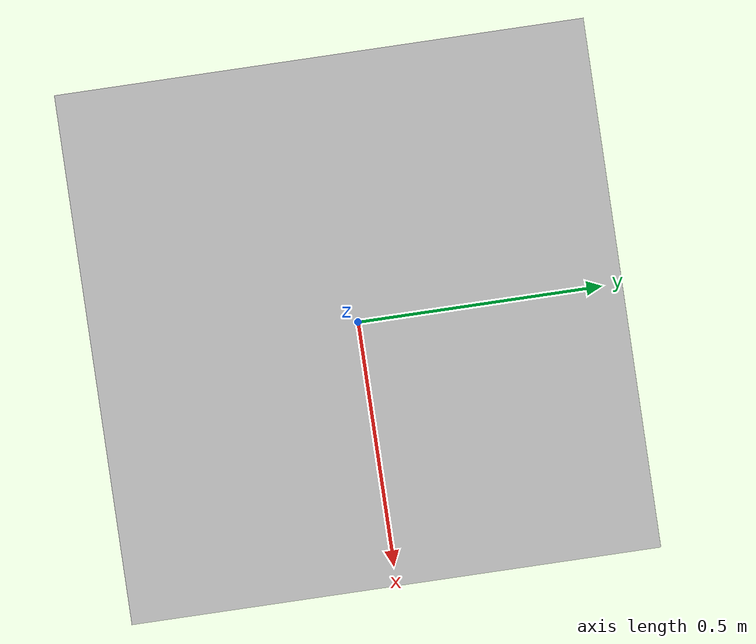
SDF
<?xml version="1.0" ?>
<sdf version="1.4">
  <model name="side_table">
    <static>true</static>
    <link name="link">
      <collision name="surface">
        <pose>0 0 0.71 0 0 0</pose>
        <geometry>
          <box>
            <size>1.0 1.0 0.04</size>
          </box>
        </geometry>
      </collision>

      <collision name="column">
        <pose>0 0 0.365 0 0 0</pose>
        <geometry>
          <box>
            <size>0.042 0.042 0.65</size>
          </box>
        </geometry>
      </collision>

      <collision name="base">
        <pose>0 0 0.02 0 0 0</pose>
        <geometry>
          <box>
            <size>0.56 0.56 0.04</size>
          </box>
        </geometry>
      </collision>

      <visual name="surface">
        <pose>0 0 0.71 0 0 0</pose>
        <geometry>
         <box>
           <size>1.0 1.0 0.04</size>
         </box>
        </geometry>
      </visual>

      <visual name="column">
        <pose>0 0 0.365 0 0 0</pose>
        <geometry>
         <box>
           <size>0.042 0.042 0.65</size>
         </box>
        </geometry>
      </visual>

      <visual name="base">
        <pose>0 0 0.02 0 0 0</pose>
        <geometry>
         <box>
           <size>0.56 0.56 0.04</size>
         </box>
        </geometry>
      </visual>
    </link>
  </model>
</sdf>
